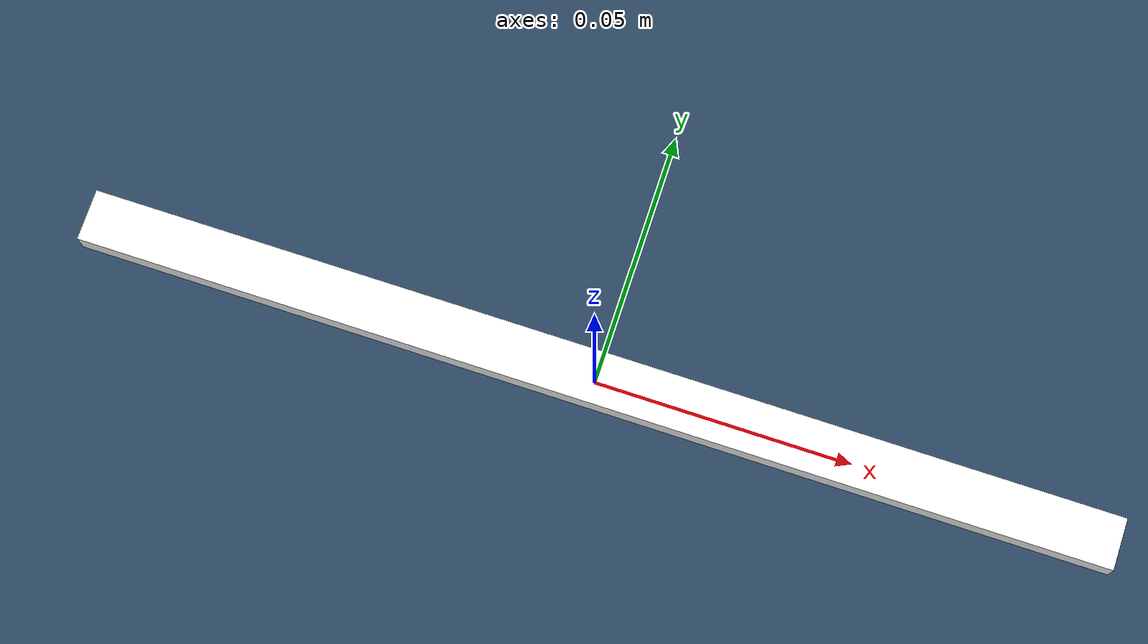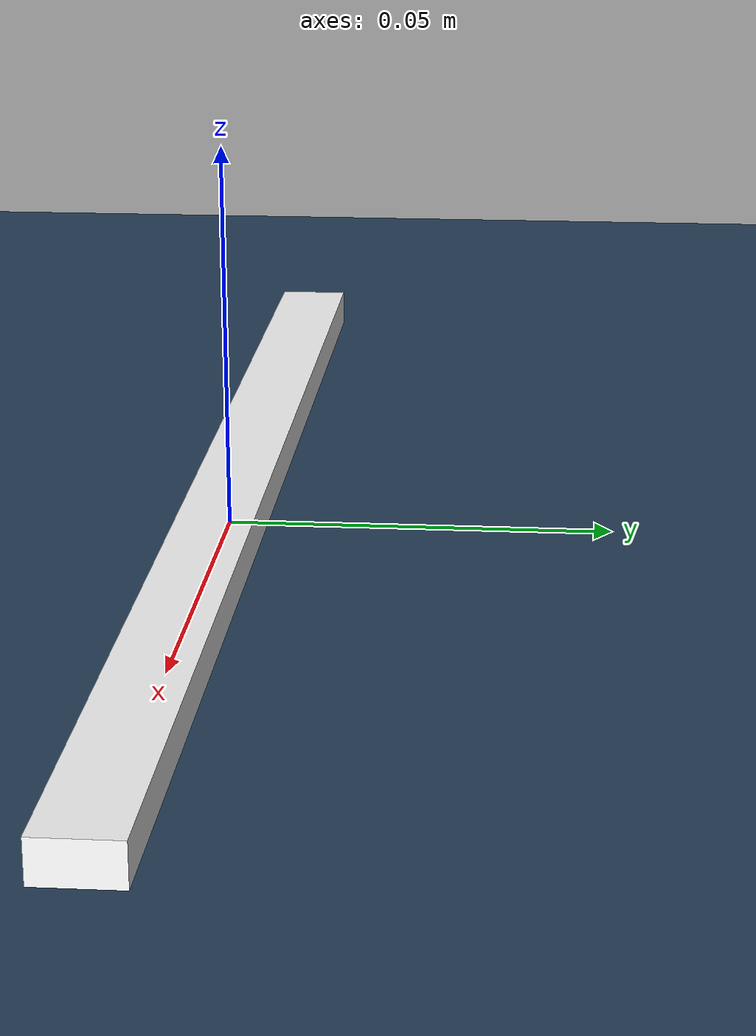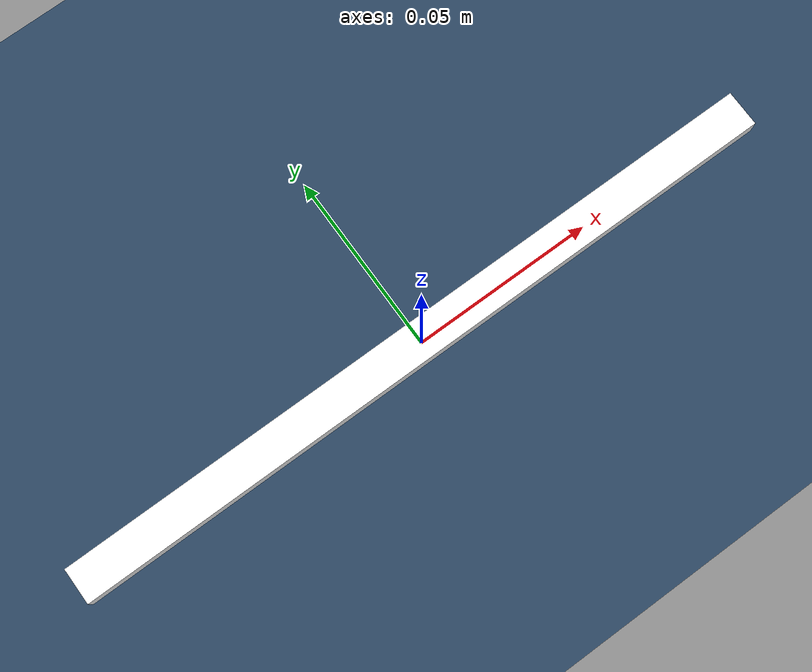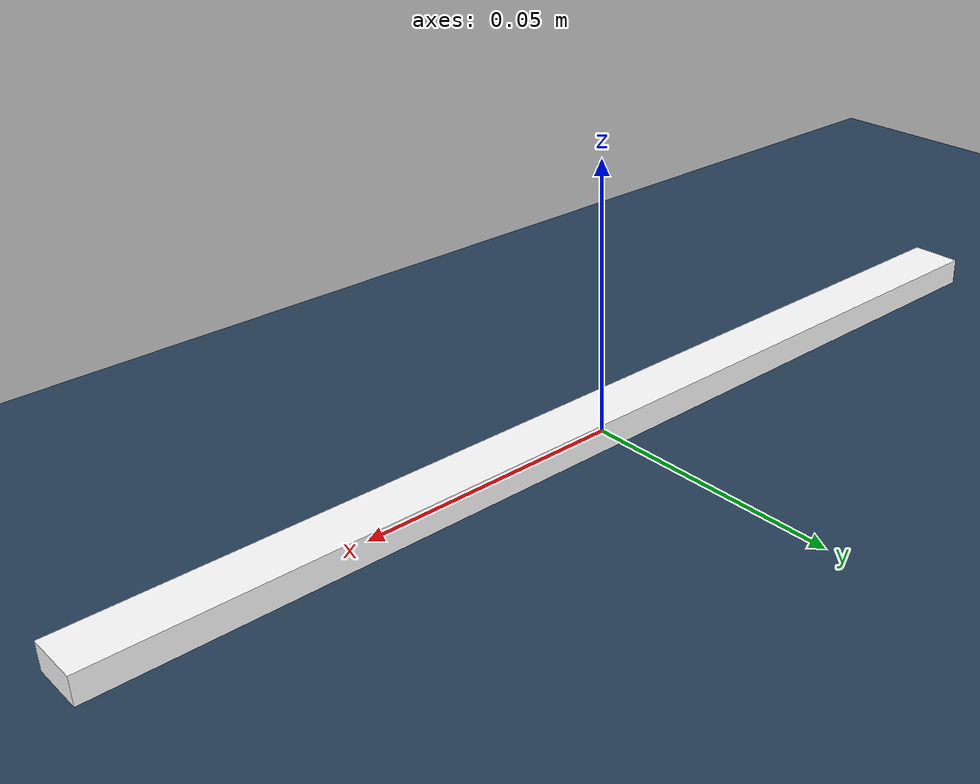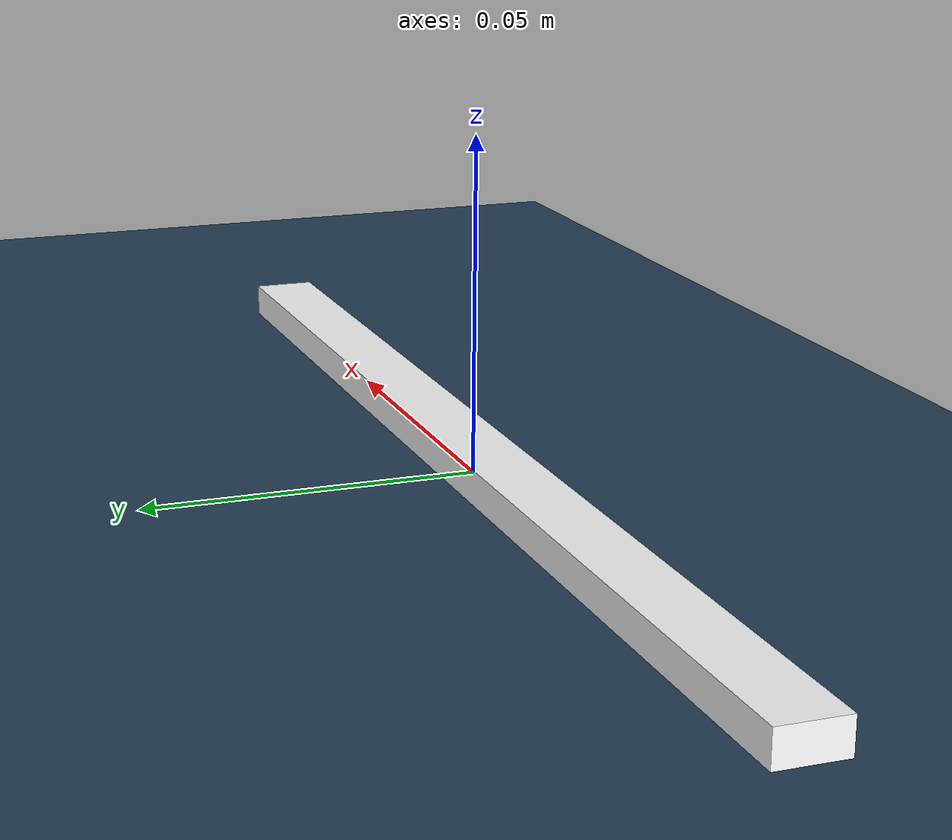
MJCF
<mujoco model="bar">
    <compiler angle="radian"/>
    <option gravity="0 0 -9.81" integrator="RK4" timestep="0.00001" o_solref="-1e5 -1e3" o_friction="0.5">
        <flag override="enable"/>
    </option>

    <asset>
        <texture type="skybox" builtin="gradient" rgb1="0.3 0.5 0.7" rgb2="0 0 0" width="512" height="3072" />
        <texture type="2d" name="floor" builtin="checker" mark="edge" rgb1="0.2 0.3 0.4" rgb2="0.1 0.2 0.3" markrgb="0.8 0.8 0.8" width="300" height="300" />
        <material name="floor" texture="floor" texuniform="true" texrepeat="5 5" reflectance="0.5"/>
    </asset>

    <visual>
        <headlight diffuse="0.6 0.6 0.6" ambient="0.3 0.3 0.3" specular="0 0 0" />
    </visual>

    <worldbody>

        <light name="spotlight0" mode="targetbodycom" target="bar" pos="0 0 10" cutoff="60" />
        <light name="spotlight1" mode="targetbodycom" target="bar" pos="0.5 0 10" cutoff="60" />
        <geom name="floor" type="plane" material="floor" size="10 10 0.1" pos="0 0 0" conaffinity="1" condim="4"/>

        <!-- bar body -->
        <body name="bar" pos="0 0 0">
            <joint type="free"/>
            <!-- bar geometry, mass = 0.5 kg -->
            <geom name="bar" type="box" size="0.1 0.005 0.005" mass="0.5" rgba="1 1 1 1"/>
        </body>

    </worldbody>
    <keyframe>
        <!-- (0.92388 0 0.38268 0) is a +45˚ rotation about y -->
        <key name="init"
            qpos="0 0 0.3 0.92388 0 0.38268 0"
            qvel="0 0 0 0 0 0"
        />
  </keyframe>
</mujoco>
